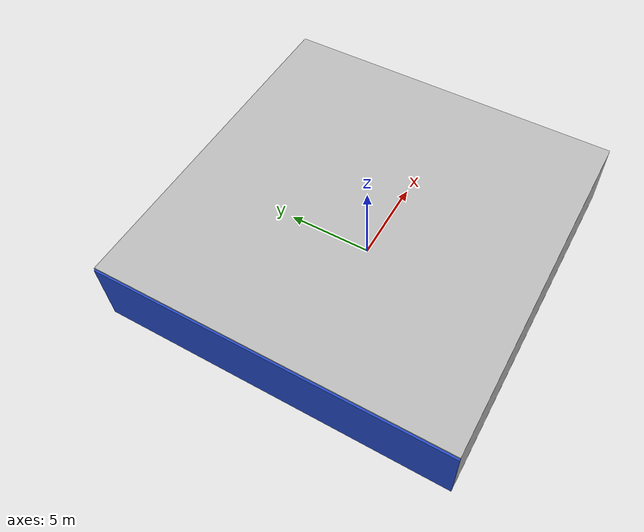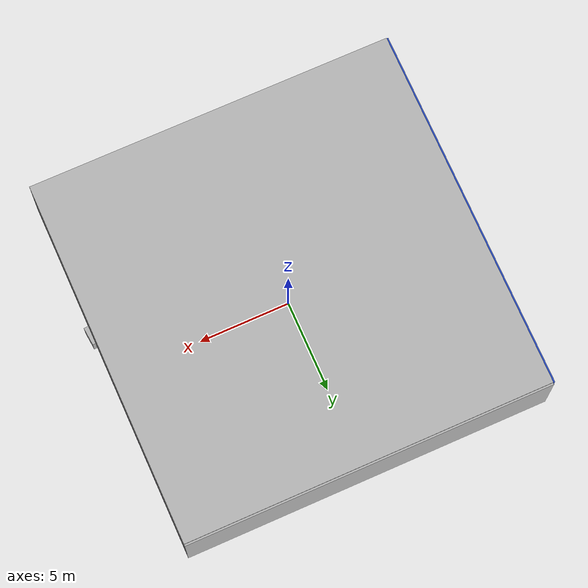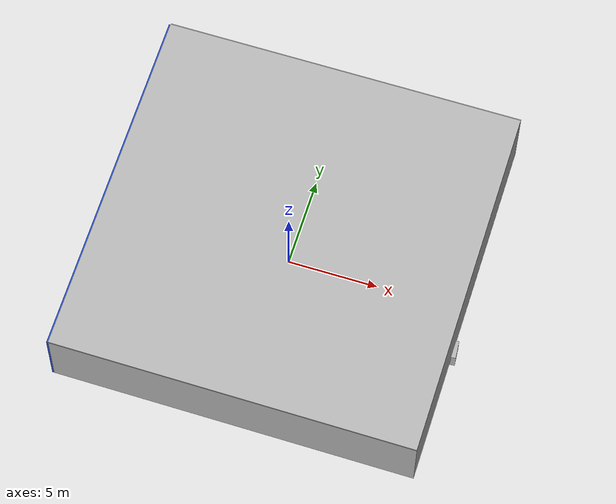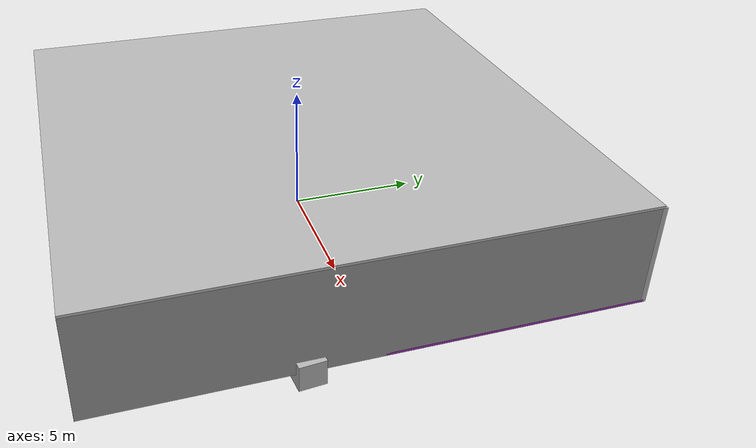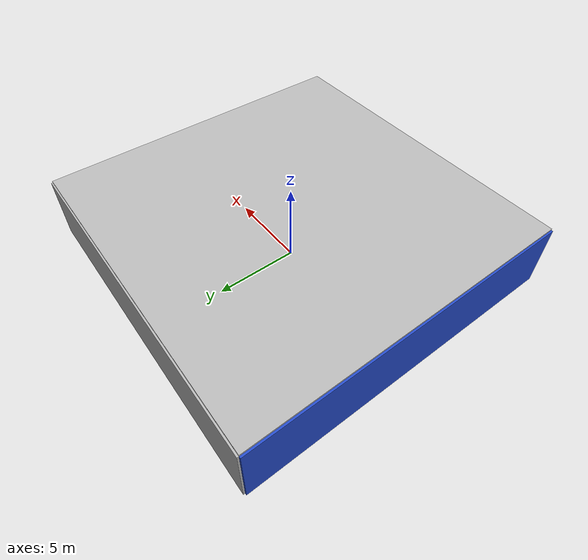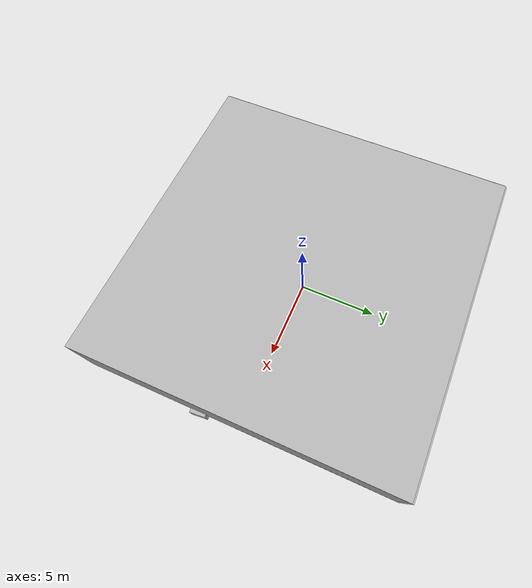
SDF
<sdf version="1.4">
 <world name="default">
  <physics type="ode">
   <max_step_size>0.001</max_step_size>
   <real_time_factor>1</real_time_factor>
   <real_time_update_rate>1000</real_time_update_rate>
   <gravity>0 0 -9.8</gravity>
  </physics>
  <scene><ambient>0.4 0.4 0.4 1</ambient><background>0.7 0.7 0.7 1</background><shadows>1</shadows></scene>
  <model name="Surrounding">
   <static>1</static>
   <link name="Ceiling">
    <collision name="Ceiling_Collision"><geometry><box><size>20 20 0.1</size></box></geometry></collision>
    <visual name="Ceiling_Visual">
     <geometry><box><size>20 20 0.1</size></box></geometry>
     <material>
      <script><uri>file://media/materials/scripts/gazebo.material</uri><name>Gazebo/LightOff</name></script>
     </material>
    </visual>
    <pose>0 0 4.05 0 0 0</pose>
   </link>
   <link name="Wall_South">
    <collision name="Wall_South_Collision">
     <geometry><box><size>20 0 4</size></box></geometry>
     <pose>0 0 2 0 -0 0</pose>
    </collision>
    <visual name="Wall_South_Visual">
     <pose>0 0 2 0 -0 0</pose>
     <geometry><box><size>20 0 4</size></box></geometry>
     <material>
      <script><uri>file://media/materials/scripts/gazebo.material</uri><name>Gazebo/Pioneer2Body</name></script>
     </material>
    </visual>
    <velocity_decay><linear>0</linear><angular>0</angular></velocity_decay>
    <pose>0 -10 0 0 -0 0</pose>
   </link>
   <link name="Wall_East">
    <collision name="Wall_21_Collision">
     <geometry><box><size>20 0 4</size></box></geometry>
     <pose>0 0 2 0 -0 0</pose>
    </collision>
    <visual name="Wall_21_Visual">
     <pose>0 0 2 0 -0 0</pose>
     <geometry><box><size>20 0 4</size></box></geometry>
     <material>
      <script><uri>file://media/materials/scripts/gazebo.material</uri><name>Gazebo/Grey</name></script>
     </material>
    </visual>
    <velocity_decay><linear>0</linear><angular>0</angular></velocity_decay>
    <pose>10 0 0 0 -0 1.5708</pose>
   </link>
   <link name="Wall_North">
    <collision name="Wall_22_Collision">
     <geometry><box><size>20 0.2 4</size></box></geometry>
     <pose>0 0 2 0 -0 0</pose>
    </collision>
    <visual name="Wall_22_Visual">
     <pose>0 0 2 0 -0 0</pose>
     <geometry><box><size>20 0.2 4</size></box></geometry>
     <material>
      <script><uri>file://media/materials/scripts/gazebo.material</uri><name>Gazebo/PioneerBody</name></script>
     </material>
    </visual>
    <velocity_decay><linear>0</linear><angular>0</angular></velocity_decay>
    <pose>0 10 0 0 -0 0</pose>
   </link>
   <link name="Wall_West">
    <collision name="Wall_23_Collision">
     <geometry><box><size>20 0.2 4</size></box></geometry>
     <pose>0 0 2 0 -0 0</pose>
    </collision>
    <visual name="Wall_23_Visual">
     <pose>0 0 2 0 -0 0</pose>
     <geometry><box><size>20 0.2 4</size></box></geometry>
     <material>
      <script><uri>file://media/materials/scripts/gazebo.material</uri><name>Gazebo/Blue</name></script>
     </material>
    </visual>
    <velocity_decay><linear>0</linear><angular>0</angular></velocity_decay>
    <pose>-10 0 0 0 0 -1.5708</pose>
   </link>
   <link name="Ground_link">
    <collision name="collision">
     <pose>0 0 .05 0 -0 0</pose>
     <geometry><box><size>20 20 0.1</size></box></geometry>
    </collision>
    <visual name="visual">
     <pose>0 0 .05 0 -0 0</pose>
     <geometry><box><size>20 20 0.1</size></box></geometry>
     <material>
      <script><uri>file://media/materials/scripts/gazebo.material</uri><name>Gazebo/Purple</name></script>
     </material>
    </visual>
   </link>
   <static>1</static>
  </model>
  <spherical_coordinates>
   <surface_model>EARTH_WGS84</surface_model>
   <latitude_deg>0</latitude_deg>
   <longitude_deg>0</longitude_deg>
   <elevation>0</elevation>
   <heading_deg>0</heading_deg>
  </spherical_coordinates>
  <light name="lightball_0" type="diffuse">
   <diffuse>0.8 0.8 0.8 1</diffuse>
   <specular>0.2 0.2 0.2 1</specular>
   <attenuation>
    <range>100</range>
    <constant>0.7</constant>
    <linear>0.01</linear>
    <quadratic>0.001</quadratic>
   </attenuation>
   <direction>-0.5 0.1 -0.9</direction>
   <pose>-9.53474584706 -9.28674810388 1.23158956712 0 0 0</pose>
  </light>
  <light name="lightball_1" type="diffuse">
   <diffuse>0.8 0.8 0.8 1</diffuse>
   <specular>0.2 0.2 0.2 1</specular>
   <attenuation>
    <range>100</range>
    <constant>0.7</constant>
    <linear>0.01</linear>
    <quadratic>0.001</quadratic>
   </attenuation>
   <direction>-0.5 0.1 -0.9</direction>
   <pose>8.20694514967 3.30440112059 2.1949146342 0 0 0</pose>
  </light>
  <light name="lightball_2" type="diffuse">
   <diffuse>0.8 0.8 0.8 1</diffuse>
   <specular>0.2 0.2 0.2 1</specular>
   <attenuation>
    <range>100</range>
    <constant>0.7</constant>
    <linear>0.01</linear>
    <quadratic>0.001</quadratic>
   </attenuation>
   <direction>-0.5 0.1 -0.9</direction>
   <pose>5.72442018158 9.94027754502 3.24238729092 0 0 0</pose>
  </light>
  <light name="lightball_3" type="diffuse">
   <diffuse>0.8 0.8 0.8 1</diffuse>
   <specular>0.2 0.2 0.2 1</specular>
   <attenuation>
    <range>100</range>
    <constant>0.7</constant>
    <linear>0.01</linear>
    <quadratic>0.001</quadratic>
   </attenuation>
   <direction>-0.5 0.1 -0.9</direction>
   <pose>0.937338073594 8.16527380704 0.980044878498 0 0 0</pose>
  </light>
  <light name="lightball_4" type="diffuse">
   <diffuse>0.8 0.8 0.8 1</diffuse>
   <specular>0.2 0.2 0.2 1</specular>
   <attenuation>
    <range>100</range>
    <constant>0.7</constant>
    <linear>0.01</linear>
    <quadratic>0.001</quadratic>
   </attenuation>
   <direction>-0.5 0.1 -0.9</direction>
   <pose>-6.30364504668 -3.88154737366 0.768352374287 0 0 0</pose>
  </light>
  <light name="lightball_5" type="diffuse">
   <diffuse>0.8 0.8 0.8 1</diffuse>
   <specular>0.2 0.2 0.2 1</specular>
   <attenuation>
    <range>100</range>
    <constant>0.7</constant>
    <linear>0.01</linear>
    <quadratic>0.001</quadratic>
   </attenuation>
   <direction>-0.5 0.1 -0.9</direction>
   <pose>7.25548725788 1.13120840175 1.99534511009 0 0 0</pose>
  </light>
  <light name="lightball_6" type="diffuse">
   <diffuse>0.8 0.8 0.8 1</diffuse>
   <specular>0.2 0.2 0.2 1</specular>
   <attenuation>
    <range>100</range>
    <constant>0.7</constant>
    <linear>0.01</linear>
    <quadratic>0.001</quadratic>
   </attenuation>
   <direction>-0.5 0.1 -0.9</direction>
   <pose>-9.39253823725 -2.43282615931 2.73715278813 0 0 0</pose>
  </light>
  <include><uri>model://cabinet</uri><pose>-6.30805775049 -1.42826894394 0 0 0 0.166146083394</pose></include>
  <include>
   <uri>model://construction_cone</uri>
   <pose>-3.32129397078 7.4126192214 0 0 0 0.85528428069</pose>
  </include>
  <include><uri>model://cabinet</uri><pose>-2.59284839955 -8.45094523356 0 0 0 1.58653572963</pose></include>
  <include>
   <uri>model://textured_shapes</uri>
   <pose>-1.65430257093 -2.02076866565 0 0 0 1.21042029815</pose>
  </include>
  <include>
   <uri>model://robocup_3Dsim_goal</uri>
   <pose>8.15181609684 -8.10058866467 0 0 0 0.503579590443</pose>
  </include>
  <include>
   <uri>model://textured_shapes</uri>
   <pose>8.22361095272 -2.64829896353 0 0 0 1.65905957987</pose>
  </include>
 </world>
</sdf>

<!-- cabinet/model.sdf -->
<sdf version="1.5">
  <model name="cabinet">
    <static>true</static>
    <link name="cabinet_bottom_plate">
      <inertial>
        <pose>0 0 -1 0 0 0</pose>
        <inertia>
          <ixx>2.050000</ixx>
          <ixy>0</ixy>
          <ixz>0</ixz>
          <iyy>2.050000</iyy>
          <iyz>0</iyz>
          <izz>2.050000</izz>
        </inertia>
        <mass>25.000000</mass>
      </inertial>
      <collision name="cabinet_bottom_plate_geom">
        <pose>0 0 0.010000 0 0 0</pose>
        <geometry>
          <box>
            <size>0.450000 0.450000 0.020000</size>
          </box>
        </geometry>
      </collision>
      <visual name="cabinet_bottom_plate_geom_visual">
        <pose>0 0 0.010000 0 0 0</pose>
        <geometry>
          <box>
            <size>0.450000 0.450000 0.020000</size>
          </box>
        </geometry>
        <material>
          <script>
            <uri>model://media/materials/scripts/gazebo.material</uri>
            <name>Gazebo/Wood</name>
          </script>
        </material>
      </visual>
      <collision name="cabinet_bottom_plate_geom_cabinet_back_plate">
        <pose>0.235000 0 0.510000 0 0 0</pose>
        <geometry>
          <box>
            <size>0.020000 0.450000 1.020000</size>
          </box>
        </geometry>
      </collision>
      <visual name="cabinet_bottom_plate_geom_cabinet_back_plate_visual">
        <pose>0.235000 0 0.510000 0 0 0</pose>
        <geometry>
          <box>
            <size>0.020000 0.450000 1.020000</size>
          </box>
        </geometry>
        <material>
          <script>
            <uri>model://media/materials/scripts/gazebo.material</uri>
            <name>Gazebo/Wood</name>
          </script>
        </material>
      </visual>
      <collision name="cabinet_bottom_plate_geom_cabinet_left_plate">
        <pose>0 0.235000 0.510000 0 0 0</pose>
        <geometry>
          <box>
            <size>0.450000 0.020000 1.020000</size>
          </box>
        </geometry>
      </collision>
      <visual name="cabinet_bottom_plate_geom_cabinet_left_plate_visual">
        <pose>0 0.235000 0.510000 0 0 0</pose>
        <geometry>
          <box>
            <size>0.450000 0.020000 1.020000</size>
          </box>
        </geometry>
        <material>
          <script>
            <uri>model://media/materials/scripts/gazebo.material</uri>
            <name>Gazebo/Wood</name>
          </script>
        </material>
      </visual>
      <collision name="cabinet_bottom_plate_geom_cabinet_middle_plate">
        <pose>0 0 0.510000 0 0 0</pose>
        <geometry>
          <box>
            <size>0.450000 0.450000 0.020000</size>
          </box>
        </geometry>
      </collision>
      <visual name="cabinet_bottom_plate_geom_cabinet_middle_plate_visual">
        <pose>0 0 0.510000 0 0 0</pose>
        <geometry>
          <box>
            <size>0.450000 0.450000 0.020000</size>
          </box>
        </geometry>
        <material>
          <script>
            <uri>model://media/materials/scripts/gazebo.material</uri>
            <name>Gazebo/Wood</name>
          </script>
        </material>
      </visual>
      <collision name="cabinet_bottom_plate_geom_cabinet_right_plate">
        <pose>0 -0.235000 0.510000 0 0 0</pose>
        <geometry>
          <box>
            <size>0.450000 0.020000 1.020000</size>
          </box>
        </geometry>
      </collision>
      <visual name="cabinet_bottom_plate_geom_cabinet_right_plate_visual">
        <pose>0 -0.235000 0.510000 0 0 0</pose>
        <geometry>
          <box>
            <size>0.450000 0.020000 1.020000</size>
          </box>
        </geometry>
        <material>
          <script>
            <uri>model://media/materials/scripts/gazebo.material</uri>
            <name>Gazebo/Wood</name>
          </script>
        </material>
      </visual>
      <collision name="cabinet_bottom_plate_geom_cabinet_top_plate">
        <pose>0 0 1.010000 0 0 0</pose>
        <geometry>
          <box>
            <size>0.450000 0.450000 0.020000</size>
          </box>
        </geometry>
      </collision>
      <visual name="cabinet_bottom_plate_geom_cabinet_top_plate_visual">
        <pose>0 0 1.010000 0 0 0</pose>
        <geometry>
          <box>
            <size>0.450000 0.450000 0.020000</size>
          </box>
        </geometry>
        <material>
          <script>
            <uri>model://media/materials/scripts/gazebo.material</uri>
            <name>Gazebo/Wood</name>
          </script>
        </material>
      </visual>
    </link>
  </model>
</sdf>

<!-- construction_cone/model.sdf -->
<sdf version="1.5">
  <model name="Construction Cone">
    <link name="link">
      <collision name="collision">
        <geometry>
          <mesh>
            <scale>10 10 10</scale>
            <uri>file://isr-testbed/construction_cone/meshes/construction_cone.dae</uri>
          </mesh>
        </geometry>
      </collision>
      <visual name="visual">
        <geometry>
          <mesh>
            <scale>10 10 10</scale>
            <uri>file://isr-testbed/construction_cone/meshes/construction_cone.dae</uri>
          </mesh>
        </geometry>
      </visual>
    </link>
  </model>
</sdf>

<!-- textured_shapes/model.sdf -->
<sdf version="1.6">
  <model name="textured_shapes">
    <pose>0 0 0.5 0 0 0</pose>
    <link name="box">
      <pose>0 -1.5 0 0 0 0</pose>
      <collision name="collision">
        <geometry>
          <box>
            <size>1 1 1</size>
          </box>
        </geometry>
      </collision>
      <visual name="visual">
        <geometry>
          <box>
            <size>1 1 1</size>
          </box>
        </geometry>
        <material>
          <script>
            <uri>model://../model_source/models/textured_shapes/materials/scripts</uri>
            <uri>model://../model_source/models/textured_shapes/materials/textures</uri>
            <name>TexturedShape/Squares</name>
          </script>
        </material>
      </visual>
    </link>
    <link name="sphere">
      <collision name="collision">
        <geometry>
          <sphere>
            <radius>0.5</radius>
          </sphere>
        </geometry>
      </collision>
      <visual name="visual">
        <geometry>
          <sphere>
            <radius>0.5</radius>
          </sphere>
        </geometry>
        <material>
          <script>
            <uri>model://../model_source/models/textured_shapes/materials/scripts</uri>
            <uri>model://../model_source/models/textured_shapes/materials/textures</uri>
            <name>TexturedShape/Squares</name>
          </script>
        </material>
      </visual>
    </link>
    <link name="cylinder">
      <pose>0 1.5 0 0 0 0</pose>
      <collision name="collision">
        <geometry>
          <cylinder>
            <radius>0.5</radius>
            <length>1</length>
          </cylinder>
        </geometry>
      </collision>
      <visual name="visual">
        <geometry>
          <cylinder>
            <radius>0.5</radius>
            <length>1</length>
          </cylinder>
        </geometry>
        <material>
          <script>
            <uri>model://../model_source/models/textured_shapes/materials/scripts</uri>
            <uri>model://../model_source/models/textured_shapes/materials/textures</uri>
            <name>TexturedShape/Squares</name>
          </script>
        </material>
      </visual>
    </link>
  </model>
</sdf>

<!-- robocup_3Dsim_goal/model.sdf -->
<sdf version="1.5">
  <model name="robocup_3d_goal">
    <static>true</static>
    <link name="left_post">
      <pose>0 1.05 0.45 0 0 0</pose>
      <collision name="collision">
        <geometry>
          <cylinder>
            <radius>0.05</radius>
            <length>0.9</length>
          </cylinder>
        </geometry>
      </collision>
      <visual name="visual">
        <geometry>
          <cylinder>
            <radius>0.05</radius>
            <length>0.9</length>
          </cylinder>
        </geometry>
        <material>
          <script>
            <uri>file://media/materials/scripts/gazebo.material</uri>
            <name>Gazebo/ZincYellow</name>
          </script>
        </material>
      </visual>
    </link>
    <link name="left_support_horiz_lower">
      <pose>0.30 1.05 0.01 0 0 0</pose>
      <collision name="collision">
        <geometry>
          <box>
            <size>0.50 0.02 0.02</size>
          </box>
        </geometry>
      </collision>
      <visual name="visual">
        <geometry>
          <box>
            <size>0.50 0.02 0.02</size>
          </box>
        </geometry>
        <material>
          <script>
            <uri>file://media/materials/scripts/gazebo.material</uri>
            <name>Gazebo/White</name>
          </script>
        </material>
      </visual>
    </link>
    <link name="left_support_horiz_upper">
      <pose>0.30 1.05 0.79 0 0 0</pose>
      <collision name="collision">
        <geometry>
          <box>
            <size>0.50 0.02 0.02</size>
          </box>
        </geometry>
      </collision>
      <visual name="visual">
        <geometry>
          <box>
            <size>0.50 0.02 0.02</size>
          </box>
        </geometry>
        <material>
          <script>
            <uri>file://media/materials/scripts/gazebo.material</uri>
            <name>Gazebo/White</name>
          </script>
        </material>
      </visual>
    </link>
    <link name="left_support_vertical">
      <pose>0.56 1.05 0.4 0 1.5708 0</pose>
      <collision name="collision">
        <geometry>
          <box>
            <size>0.80 0.02 0.02</size>
          </box>
        </geometry>
      </collision>
      <visual name="visual">
        <geometry>
          <box>
            <size>0.80 0.02 0.02</size>
          </box>
        </geometry>
        <material>
          <script>
            <uri>file://media/materials/scripts/gazebo.material</uri>
            <name>Gazebo/White</name>
          </script>
        </material>
      </visual>
    </link>
    <link name="right_support_horiz_lower">
      <pose>0.30 -1.05 0.01 0 0 0</pose>
      <collision name="collision">
        <geometry>
          <box>
            <size>0.50 0.02 0.02</size>
          </box>
        </geometry>
      </collision>
      <visual name="visual">
        <geometry>
          <box>
            <size>0.50 0.02 0.02</size>
          </box>
        </geometry>
        <material>
          <script>
            <uri>file://media/materials/scripts/gazebo.material</uri>
            <name>Gazebo/White</name>
          </script>
        </material>
      </visual>
    </link>
    <link name="right_support_horiz_upper">
      <pose>0.30 -1.05 0.79 0 0 0</pose>
      <collision name="collision">
        <geometry>
          <box>
            <size>0.50 0.02 0.02</size>
          </box>
        </geometry>
      </collision>
      <visual name="visual">
        <geometry>
          <box>
            <size>0.50 0.02 0.02</size>
          </box>
        </geometry>
        <material>
          <script>
            <uri>file://media/materials/scripts/gazebo.material</uri>
            <name>Gazebo/White</name>
          </script>
        </material>
      </visual>
    </link>
    <link name="right_support_vertical">
      <pose>0.56 -1.05 0.4 0 1.5708 0</pose>
      <collision name="collision">
        <geometry>
          <box>
            <size>0.80 0.02 0.02</size>
          </box>
        </geometry>
      </collision>
      <visual name="visual">
        <geometry>
          <box>
            <size>0.80 0.02 0.02</size>
          </box>
        </geometry>
        <material>
          <script>
            <uri>file://media/materials/scripts/gazebo.material</uri>
            <name>Gazebo/White</name>
          </script>
        </material>
      </visual>
    </link>
    <link name="center_support_horiz_lower">
      <pose>0.56 0 0.01 0 1.5708 0</pose>
      <collision name="collision">
        <geometry>
          <box>
            <size>0.02 2.08 0.02</size>
          </box>
        </geometry>
      </collision>
      <visual name="visual">
        <geometry>
          <box>
            <size>0.02 2.08 0.02</size>
          </box>
        </geometry>
        <material>
          <script>
            <uri>file://media/materials/scripts/gazebo.material</uri>
            <name>Gazebo/White</name>
          </script>
        </material>
      </visual>
    </link>
    <link name="center_support_horiz_upper">
      <pose>0.56 0 0.79 0 1.5708 0</pose>
      <collision name="collision">
        <geometry>
          <box>
            <size>0.02 2.08 0.02</size>
          </box>
        </geometry>
      </collision>
      <visual name="visual">
        <geometry>
          <box>
            <size>0.02 2.08 0.02</size>
          </box>
        </geometry>
        <material>
          <script>
            <uri>file://media/materials/scripts/gazebo.material</uri>
            <name>Gazebo/White</name>
          </script>
        </material>
      </visual>
    </link>
    <link name="right_post">
      <pose>0 -1.05 0.45 0 0 0</pose>
      <collision name="collision">
        <geometry>
          <cylinder>
            <radius>0.05</radius>
            <length>0.9</length>
          </cylinder>
        </geometry>
      </collision>
      <visual name="visual">
        <geometry>
          <cylinder>
            <radius>0.05</radius>
            <length>0.9</length>
          </cylinder>
        </geometry>
        <material>
          <script>
            <uri>file://media/materials/scripts/gazebo.material</uri>
            <name>Gazebo/ZincYellow</name>
          </script>
        </material>
      </visual>
    </link>
    <link name="crossbar">
      <pose>0 0 0.85 1.57 1.57 0</pose>
      <collision name="collision">
        <geometry>
          <cylinder>
            <radius>0.05</radius>
            <length>2.0</length>
          </cylinder>
        </geometry>
      </collision>
      <visual name="visual">
        <geometry>
          <cylinder>
            <radius>0.05</radius>
            <length>2.0</length>
          </cylinder>
        </geometry>
        <material>
          <script>
            <uri>file://media/materials/scripts/gazebo.material</uri>
            <name>Gazebo/ZincYellow</name>
          </script>
        </material>
      </visual>
    </link>
    <link name="center_net">
      <pose>0.56 0 0.40 0 0 0</pose>
      <collision name="collision">
        <geometry>
          <box>
            <size>0.01 2.1 0.80</size>
          </box>
        </geometry>
      </collision>
      <visual name="visual">
        <geometry>
          <box>
            <size>0.01 2.1 0.80</size>
          </box>
        </geometry>
        <material>
          <script>
            <uri>model://../model_source/models/robocup09_spl_field/materials/scripts/</uri>
            <uri>model://../model_source/models/robocup09_spl_field/materials/textures/</uri>
            <name>RoboCup/Net</name>
          </script>
        </material>
      </visual>
    </link>
    <link name="left_net">
      <pose>0.30 1.05 0.40 0 0 0</pose>
      <collision name="collision">
        <geometry>
          <box>
            <size>0.50 0.01 0.76</size>
          </box>
        </geometry>
      </collision>
      <visual name="visual">
        <geometry>
          <box>
            <size>0.50 0.01 0.76</size>
          </box>
        </geometry>
        <material>
          <script>
            <uri>model://../model_source/models/robocup09_spl_field/materials/scripts/</uri>
            <uri>model://../model_source/models/robocup09_spl_field/materials/textures/</uri>
            <name>RoboCup/Net</name>
          </script>
        </material>
      </visual>
    </link>
    <link name="right_net">
      <pose>0.30 -1.05 0.40 0 0 0</pose>
      <collision name="collision">
        <geometry>
          <box>
            <size>0.50 0.01 0.76</size>
          </box>
        </geometry>
      </collision>
      <visual name="visual">
        <geometry>
          <box>
            <size>0.50 0.01 0.76</size>
          </box>
        </geometry>
        <material>
          <script>
            <uri>model://../model_source/models/robocup09_spl_field/materials/scripts/</uri>
            <uri>model://../model_source/models/robocup09_spl_field/materials/textures/</uri>
            <name>RoboCup/Net</name>
          </script>
        </material>
      </visual>
    </link>
  </model>
</sdf>
